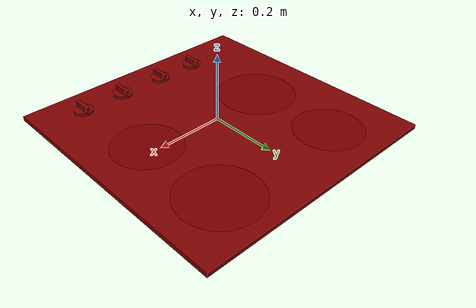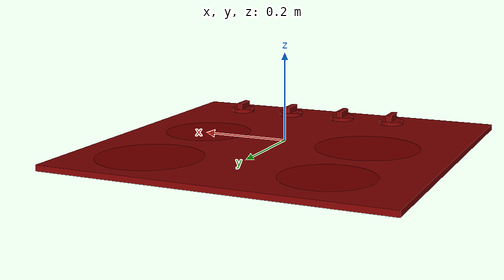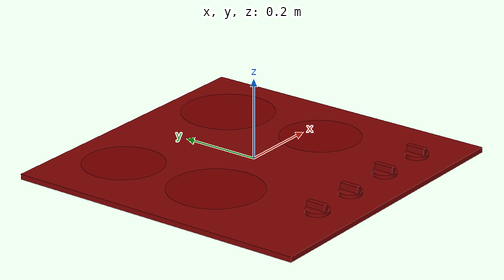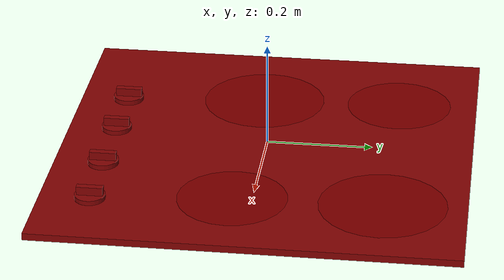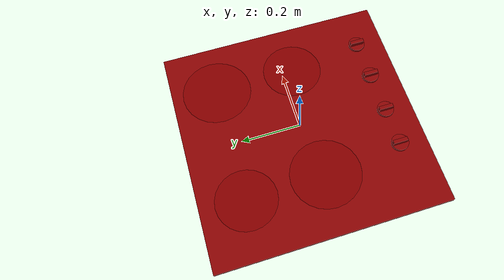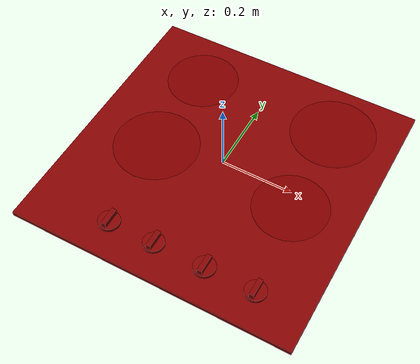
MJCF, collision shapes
<?xml version='1.0' encoding='UTF-8'?>
<mujoco model="model">
  <option timestep="0.002" gravity="0.0 0.0 -9.81"/>
  <compiler angle="radian"/>
  <asset>
    <mesh file="visuals/knob_front_left.obj" name="knob_front_left_vis"/>
    <mesh file="visuals/knob_front_right.obj" name="knob_front_right_vis"/>
    <mesh file="visuals/knob_rear_left.obj" name="knob_rear_left_vis"/>
    <mesh file="visuals/knob_rear_right.obj" name="knob_rear_right_vis"/>
    <mesh file="visuals/Body001.obj" name="Body001_vis"/>
    <texture file="visuals/T_BC001.png" name="Body001_material" type="2d"/>
    <material name="Body001_material" rgba="1 1 1 1.0" texture="Body001_material" shininess="0.47988295555114746" specular="3"/>
    <texture file="visuals/T_BC001.png" name="knob_front_left_material" type="2d"/>
    <material name="knob_front_left_material" rgba="1 1 1 1.0" texture="knob_front_left_material" shininess="0.47988295555114746" specular="0.3103448502657381"/>
    <texture file="visuals/T_BC001.png" name="knob_front_right_material" type="2d"/>
    <material name="knob_front_right_material" rgba="1 1 1 1.0" texture="knob_front_right_material" shininess="0.47988295555114746" specular="0.3103448502657381"/>
    <texture file="visuals/T_BC001.png" name="knob_rear_left_material" type="2d"/>
    <material name="knob_rear_left_material" rgba="1 1 1 1.0" texture="knob_rear_left_material" shininess="0.47988295555114746" specular="0.3103448502657381"/>
    <texture file="visuals/T_BC001.png" name="knob_rear_right_material" type="2d"/>
    <material name="knob_rear_right_material" rgba="1 1 1 1.0" texture="knob_rear_right_material" shininess="0.47988295555114746" specular="0.3103448502657381"/>
  </asset>
  <default>
    <default class="visual">
      <geom conaffinity="0" contype="0" group="1" type="mesh"/>
    </default>
    <default class="collision">
      <geom group="0" rgba="0.5 0 0 0.5"/>
    </default>
    <default class="spawn">
      <geom group="0" rgba="1 1 1 0.5" contype="0" conaffinity="0"/>
      <site group="0" rgba="1 1 1 0.5"/>
    </default>
    <default class="region">
      <geom group="1" conaffinity="0" contype="0" rgba="0 1 0 0"/>
    </default>
  </default>
  <worldbody>
    <body>
      <body name="object">
        <geom mesh="Body001_vis" type="mesh" solimp="0.998 0.998 0.001" solref="0.001 1" friction="0.95 0.3 0.1" class="visual" material="Body001_material"/>
        <geom class="collision" type="box" pos="0.0 -9.613397855545713e-10 -0.012733331881463528" size="0.3912888765335083 0.3912888765335083 0.0066495188511908054" quat="1.0 0.0 0.0 0.0"/>
        <body name="knob_front_left">
          <joint axis="0.0 0.0 1.0" pos="-0.15959760546684265 -0.29781341552734375 0.004379876423627138" limited="true" name="knob_front_left_joint" range="0.0 3.141592653589793" type="hinge" damping="0.2" armature="0.01" frictionloss="1"/>
          <geom mesh="knob_front_left_vis" type="mesh" solimp="0.998 0.998 0.001" solref="0.001 1" friction="0.95 0.3 0.1" class="visual" material="knob_front_left_material"/>
          <geom class="collision" type="box" pos="-0.15974116325378418 -0.2966524362564087 0.011575335636734962" size="0.006519583519548178 0.025131184607744217 0.008272312581539154" quat="1.0 0.0 0.0 0.0" name="knob_front_left_main" friction="100 0.5 0.01"/>
          <geom class="collision" type="cylinder" pos="-0.1598851978778839 -0.29782411456108093 -0.0005884533165954053" size="0.02927549183368683 0.004651724360883236" quat="1.0 -3.5527132552840273e-15 0.0 0.0" friction="100 0.5 0.01"/>
        </body>
        <body name="knob_front_right">
          <joint axis="0.0 0.0 1.0" pos="0.2511397898197174 -0.2956247329711914 0.004379876423627138" limited="true" name="knob_front_right_joint" range="0.0 3.141592653589793" type="hinge" damping="0.2" armature="0.01" frictionloss="1"/>
          <geom mesh="knob_front_right_vis" type="mesh" solimp="0.998 0.998 0.001" solref="0.001 1" friction="0.95 0.3 0.1" class="visual" material="knob_front_right_material"/>
          <geom class="collision" type="box" pos="0.251102089881897 -0.29546546936035156 0.011488744057714939" size="0.006342462729662657 0.02444826066493988 0.008123439736664295" quat="1.0 0.0 0.0 0.0" name="knob_front_right_main" friction="100 0.5 0.01"/>
          <geom class="collision" type="cylinder" pos="0.2511170208454132 -0.2958422601222992 -0.0006728885346092284" size="0.028480106964707375 0.004435861948877573" quat="1.0 -3.5527130435257905e-15 0.0 0.0" friction="100 0.5 0.01"/>
        </body>
        <body name="knob_rear_left">
          <joint axis="0.0 0.0 1.0" pos="-0.029064353555440903 -0.298065185546875 0.004379876423627138" limited="true" name="knob_rear_left_joint" range="0.0 3.141592653589793" type="hinge" damping="0.2" armature="0.01" frictionloss="1"/>
          <geom mesh="knob_rear_left_vis" type="mesh" solimp="0.998 0.998 0.001" solref="0.001 1" friction="0.95 0.3 0.1" class="visual" material="knob_rear_left_material"/>
          <geom class="collision" type="box" pos="-0.028956111520528793 -0.2978096604347229 0.011351747438311577" size="0.006354008335620165 0.02449280209839344 0.00813313852995634" quat="1.0 0.0 0.0 0.0" name="knob_rear_left_main" friction="100 0.5 0.01"/>
          <geom class="collision" type="cylinder" pos="-0.029028242453932762 -0.2980884909629822 -0.0007754437974654138" size="0.02853200025856495 0.004449946340173483" quat="1.0 -3.5527132552840273e-15 0.0 0.0" friction="100 0.5 0.01"/>
        </body>
        <body name="knob_rear_right">
          <joint axis="0.0 0.0 1.0" pos="0.11419481039047241 -0.2973874509334564 0.004379876423627138" limited="true" name="knob_rear_right_joint" range="0.0 3.141592653589793" type="hinge" damping="0.2" armature="0.01" frictionloss="1"/>
          <geom mesh="knob_rear_right_vis" type="mesh" solimp="0.998 0.998 0.001" solref="0.001 1" friction="0.95 0.3 0.1" class="visual" material="knob_rear_right_material"/>
          <geom class="collision" type="box" pos="0.11393211781978607 -0.29735609889030457 0.011200075969099998" size="0.00650397315621376 0.025070859119296074 0.008259191177785397" quat="1.0 0.0 0.0 0.0" name="knob_rear_right_main" friction="100 0.5 0.01"/>
          <geom class="collision" type="cylinder" pos="0.1136954054236412 -0.2973831593990326 -0.0004593618505168706" size="0.029205402359366417 0.004632700700312853" quat="1.0 -3.5527132552840273e-15 0.0 0.0" friction="100 0.5 0.01"/>
        </body>
        <site type="cylinder" rgba="0.5 0 0 0.5" size="0.11840877681970596 0.0001" pos="0.2120876908302307 0.23648498952388763 -0.005651060491800308" name="burner_on_rear_right"/>
        <site type="cylinder" rgba="0.5 0 0 0.5" size="0.10210439562797546 0.0001" pos="0.21788763999938965 -0.03862502798438072 -0.005651060491800308" name="burner_on_front_right"/>
        <site type="cylinder" rgba="0.5 0 0 0.5" size="0.11847741156816483 0.0001" pos="-0.18798910081386566 -0.02872050739824772 -0.005651060491800308" name="burner_on_front_left"/>
        <site type="cylinder" rgba="0.5 0 0 0.5" size="0.10180950164794922 0.0001" pos="-0.19647158682346344 0.23864439129829407 -0.005651060491800308" name="burner_on_rear_left"/>
        <site name="burner_rear_right_place_site" type="cylinder" rgba="0.5 0 0 0" size="0.11840877681970596 4.999999509891495e-05" pos="0.2120876908302307 0.23648498952388763 -0.005651060491800308"/>
        <site name="burner_front_right_place_site" type="cylinder" rgba="0.5 0 0 0" size="0.10210439562797546 4.999999509891495e-05" pos="0.21788763999938965 -0.03862502798438072 -0.005651060491800308"/>
        <site name="burner_front_left_place_site" type="cylinder" rgba="0.5 0 0 0" size="0.11847741156816483 4.999999873689376e-05" pos="-0.18798910081386566 -0.02872050739824772 -0.005651060491800308"/>
        <site name="burner_rear_left_place_site" type="cylinder" rgba="0.5 0 0 0" size="0.10180950164794922 4.999999873689376e-05" pos="-0.19647158682346344 0.23864439129829407 -0.005651060491800308"/>
        <geom class="region" name="reg_main" type="box" pos="-1.1414345912896806e-08 0.0 -0.012733331881463528" size="0.3922889361381531 0.3922889361381531 0.007649516988545656"/>
      </body>
    </body>
  </worldbody>
  <actuator>
    <motor name="knob_front_left_joint_actuator" joint="knob_front_left_joint" gear="10"/>
    <motor name="knob_front_right_joint_actuator" joint="knob_front_right_joint" gear="10"/>
    <motor name="knob_rear_left_joint_actuator" joint="knob_rear_left_joint" gear="10"/>
    <motor name="knob_rear_right_joint_actuator" joint="knob_rear_right_joint" gear="10"/>
  </actuator>
</mujoco>
